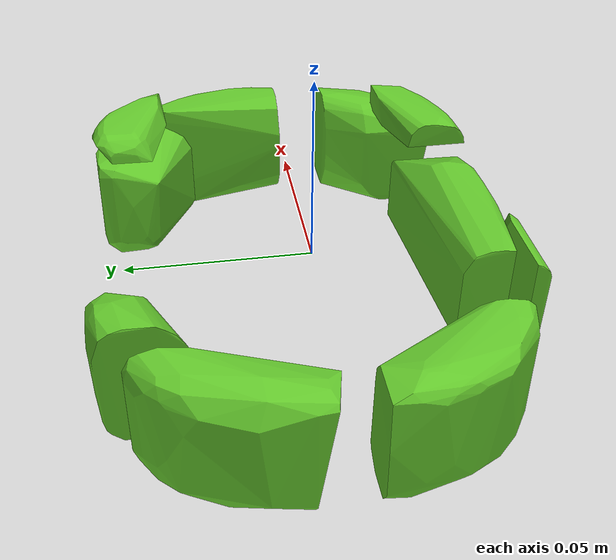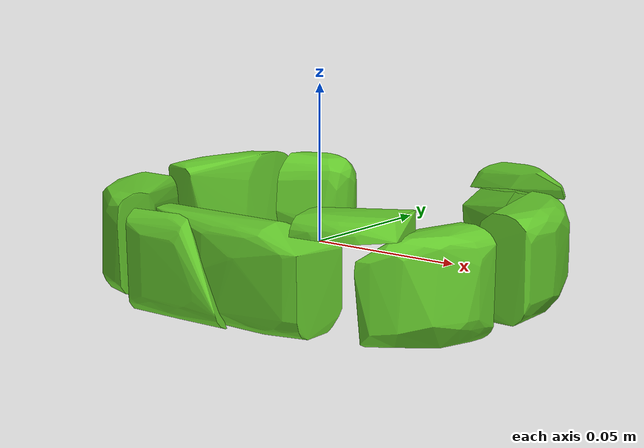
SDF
<?xml version='1.0' encoding='UTF-8'?>
<!-- This SDF was autogenerated by obj_to_drake_sdf.py -->
<sdf version="1.7">
  <model name="C_shape_new_video">
    <link name="C_shape_new_video">
      <inertial>
        <pose>0 0 0 0 0 0</pose>
        <mass>0.05</mass>
        <inertia>
          <ixx>7.5798267e-05</ixx>
          <iyy>0.00014211717</iyy>
          <izz>0.00020198652</izz>
          <ixy>-1.642641e-07</ixy>
          <ixz>-1.5892968e-07</ixz>
          <iyz>-8.6011787e-07</iyz>
        </inertia>
      </inertial>
      <visual name="convex_0">
        <pose>0 0 0 0 0 0</pose>
        <geometry>
          <mesh>
            <uri>C_shape_new_video_convex_0.obj</uri>
          </mesh>
        </geometry>
        <material>
          <diffuse>0.39215686274509803 0.7843137254901961 0.17254901960784313 1</diffuse>
        </material>
      </visual>
      <collision name="convex_0_volume">
        <pose>0 0 0 0 0 0</pose>
        <geometry>
          <mesh>
            <uri>C_shape_new_video_convex_0.obj</uri>
          </mesh>
        </geometry>
        <drake:proximity_properties xmlns:drake="uri:drake">
          <drake:compliant_hydroelastic/>
          <drake:hydroelastic_modulus> 3.0e7 </drake:hydroelastic_modulus>
          <drake:mesh_resolution_hint> 0.02 </drake:mesh_resolution_hint>
          <drake:hunt_crossley_dissipation>10</drake:hunt_crossley_dissipation>
          <drake:mu_dynamic>0.3</drake:mu_dynamic>
        </drake:proximity_properties>
      </collision>
      <visual name="convex_1">
        <pose>0 0 0 0 0 0</pose>
        <geometry>
          <mesh>
            <uri>C_shape_new_video_convex_1.obj</uri>
          </mesh>
        </geometry>
        <material>
          <diffuse>0.39215686274509803 0.7843137254901961 0.17254901960784313 1</diffuse>
        </material>
      </visual>
      <collision name="convex_1_volume">
        <pose>0 0 0 0 0 0</pose>
        <geometry>
          <mesh>
            <uri>C_shape_new_video_convex_1.obj</uri>
          </mesh>
        </geometry>
        <drake:proximity_properties xmlns:drake="uri:drake">
          <drake:compliant_hydroelastic/>
          <drake:hydroelastic_modulus> 3.0e7 </drake:hydroelastic_modulus>
          <drake:mesh_resolution_hint> 0.02 </drake:mesh_resolution_hint>
          <drake:hunt_crossley_dissipation>10</drake:hunt_crossley_dissipation>
          <drake:mu_dynamic>0.3</drake:mu_dynamic>
        </drake:proximity_properties>
      </collision>
      <visual name="convex_2">
        <pose>0 0 0 0 0 0</pose>
        <geometry>
          <mesh>
            <uri>C_shape_new_video_convex_2.obj</uri>
          </mesh>
        </geometry>
        <material>
          <diffuse>0.39215686274509803 0.7843137254901961 0.17254901960784313 1</diffuse>
        </material>
      </visual>
      <collision name="convex_2_volume">
        <pose>0 0 0 0 0 0</pose>
        <geometry>
          <mesh>
            <uri>C_shape_new_video_convex_2.obj</uri>
          </mesh>
        </geometry>
        <drake:proximity_properties xmlns:drake="uri:drake">
          <drake:compliant_hydroelastic/>
          <drake:hydroelastic_modulus> 3.0e7 </drake:hydroelastic_modulus>
          <drake:mesh_resolution_hint> 0.02 </drake:mesh_resolution_hint>
          <drake:hunt_crossley_dissipation>10</drake:hunt_crossley_dissipation>
          <drake:mu_dynamic>0.3</drake:mu_dynamic>
        </drake:proximity_properties>
      </collision>
      <visual name="convex_3">
        <pose>0 0 0 0 0 0</pose>
        <geometry>
          <mesh>
            <uri>C_shape_new_video_convex_3.obj</uri>
          </mesh>
        </geometry>
        <material>
          <diffuse>0.39215686274509803 0.7843137254901961 0.17254901960784313 1</diffuse>
        </material>
      </visual>
      <collision name="convex_3_volume">
        <pose>0 0 0 0 0 0</pose>
        <geometry>
          <mesh>
            <uri>C_shape_new_video_convex_3.obj</uri>
          </mesh>
        </geometry>
        <drake:proximity_properties xmlns:drake="uri:drake">
          <drake:compliant_hydroelastic/>
          <drake:hydroelastic_modulus> 3.0e7 </drake:hydroelastic_modulus>
          <drake:mesh_resolution_hint> 0.02 </drake:mesh_resolution_hint>
          <drake:hunt_crossley_dissipation>10</drake:hunt_crossley_dissipation>
          <drake:mu_dynamic>0.3</drake:mu_dynamic>
        </drake:proximity_properties>
      </collision>
      <visual name="convex_4">
        <pose>0 0 0 0 0 0</pose>
        <geometry>
          <mesh>
            <uri>C_shape_new_video_convex_4.obj</uri>
          </mesh>
        </geometry>
        <material>
          <diffuse>0.39215686274509803 0.7843137254901961 0.17254901960784313 1</diffuse>
        </material>
      </visual>
      <collision name="convex_4_volume">
        <pose>0 0 0 0 0 0</pose>
        <geometry>
          <mesh>
            <uri>C_shape_new_video_convex_4.obj</uri>
          </mesh>
        </geometry>
        <drake:proximity_properties xmlns:drake="uri:drake">
          <drake:compliant_hydroelastic/>
          <drake:hydroelastic_modulus> 3.0e7 </drake:hydroelastic_modulus>
          <drake:mesh_resolution_hint> 0.02 </drake:mesh_resolution_hint>
          <drake:hunt_crossley_dissipation>10</drake:hunt_crossley_dissipation>
          <drake:mu_dynamic>0.3</drake:mu_dynamic>
        </drake:proximity_properties>
      </collision>
      <visual name="convex_5">
        <pose>0 0 0 0 0 0</pose>
        <geometry>
          <mesh>
            <uri>C_shape_new_video_convex_5.obj</uri>
          </mesh>
        </geometry>
        <material>
          <diffuse>0.39215686274509803 0.7843137254901961 0.17254901960784313 1</diffuse>
        </material>
      </visual>
      <collision name="convex_5_volume">
        <pose>0 0 0 0 0 0</pose>
        <geometry>
          <mesh>
            <uri>C_shape_new_video_convex_5.obj</uri>
          </mesh>
        </geometry>
        <drake:proximity_properties xmlns:drake="uri:drake">
          <drake:compliant_hydroelastic/>
          <drake:hydroelastic_modulus> 3.0e7 </drake:hydroelastic_modulus>
          <drake:mesh_resolution_hint> 0.02 </drake:mesh_resolution_hint>
          <drake:hunt_crossley_dissipation>10</drake:hunt_crossley_dissipation>
          <drake:mu_dynamic>0.3</drake:mu_dynamic>
        </drake:proximity_properties>
      </collision>
      <visual name="convex_6">
        <pose>0 0 0 0 0 0</pose>
        <geometry>
          <mesh>
            <uri>C_shape_new_video_convex_6.obj</uri>
          </mesh>
        </geometry>
        <material>
          <diffuse>0.39215686274509803 0.7843137254901961 0.17254901960784313 1</diffuse>
        </material>
      </visual>
      <collision name="convex_6_volume">
        <pose>0 0 0 0 0 0</pose>
        <geometry>
          <mesh>
            <uri>C_shape_new_video_convex_6.obj</uri>
          </mesh>
        </geometry>
        <drake:proximity_properties xmlns:drake="uri:drake">
          <drake:compliant_hydroelastic/>
          <drake:hydroelastic_modulus> 3.0e7 </drake:hydroelastic_modulus>
          <drake:mesh_resolution_hint> 0.02 </drake:mesh_resolution_hint>
          <drake:hunt_crossley_dissipation>10</drake:hunt_crossley_dissipation>
          <drake:mu_dynamic>0.3</drake:mu_dynamic>
        </drake:proximity_properties>
      </collision>
      <visual name="convex_7">
        <pose>0 0 0 0 0 0</pose>
        <geometry>
          <mesh>
            <uri>C_shape_new_video_convex_7.obj</uri>
          </mesh>
        </geometry>
        <material>
          <diffuse>0.39215686274509803 0.7843137254901961 0.17254901960784313 1</diffuse>
        </material>
      </visual>
      <collision name="convex_7_volume">
        <pose>0 0 0 0 0 0</pose>
        <geometry>
          <mesh>
            <uri>C_shape_new_video_convex_7.obj</uri>
          </mesh>
        </geometry>
        <drake:proximity_properties xmlns:drake="uri:drake">
          <drake:compliant_hydroelastic/>
          <drake:hydroelastic_modulus> 3.0e7 </drake:hydroelastic_modulus>
          <drake:mesh_resolution_hint> 0.02 </drake:mesh_resolution_hint>
          <drake:hunt_crossley_dissipation>10</drake:hunt_crossley_dissipation>
          <drake:mu_dynamic>0.3</drake:mu_dynamic>
        </drake:proximity_properties>
      </collision>
      <visual name="convex_8">
        <pose>0 0 0 0 0 0</pose>
        <geometry>
          <mesh>
            <uri>C_shape_new_video_convex_8.obj</uri>
          </mesh>
        </geometry>
        <material>
          <diffuse>0.39215686274509803 0.7843137254901961 0.17254901960784313 1</diffuse>
        </material>
      </visual>
      <collision name="convex_8_volume">
        <pose>0 0 0 0 0 0</pose>
        <geometry>
          <mesh>
            <uri>C_shape_new_video_convex_8.obj</uri>
          </mesh>
        </geometry>
        <drake:proximity_properties xmlns:drake="uri:drake">
          <drake:compliant_hydroelastic/>
          <drake:hydroelastic_modulus> 3.0e7 </drake:hydroelastic_modulus>
          <drake:mesh_resolution_hint> 0.02 </drake:mesh_resolution_hint>
          <drake:hunt_crossley_dissipation>10</drake:hunt_crossley_dissipation>
          <drake:mu_dynamic>0.3</drake:mu_dynamic>
        </drake:proximity_properties>
      </collision>
      <visual name="convex_9">
        <pose>0 0 0 0 0 0</pose>
        <geometry>
          <mesh>
            <uri>C_shape_new_video_convex_9.obj</uri>
          </mesh>
        </geometry>
        <material>
          <diffuse>0.39215686274509803 0.7843137254901961 0.17254901960784313 1</diffuse>
        </material>
      </visual>
      <collision name="convex_9_volume">
        <pose>0 0 0 0 0 0</pose>
        <geometry>
          <mesh>
            <uri>C_shape_new_video_convex_9.obj</uri>
          </mesh>
        </geometry>
        <drake:proximity_properties xmlns:drake="uri:drake">
          <drake:compliant_hydroelastic/>
          <drake:hydroelastic_modulus> 3.0e7 </drake:hydroelastic_modulus>
          <drake:mesh_resolution_hint> 0.02 </drake:mesh_resolution_hint>
          <drake:hunt_crossley_dissipation>10</drake:hunt_crossley_dissipation>
          <drake:mu_dynamic>0.3</drake:mu_dynamic>
        </drake:proximity_properties>
      </collision>
    </link>
  </model>
</sdf>
